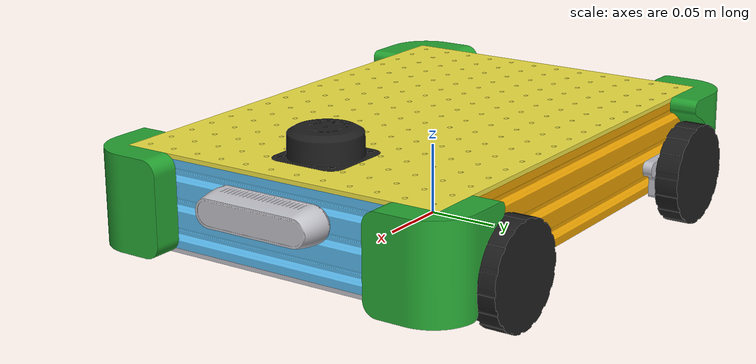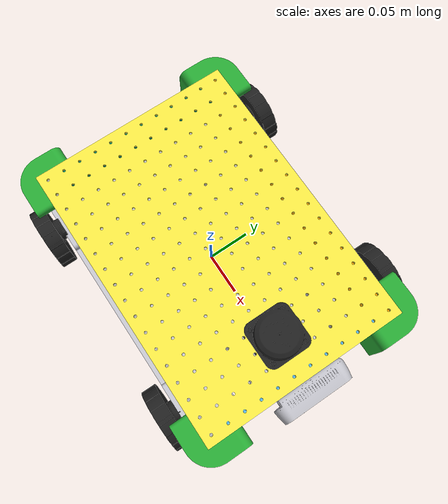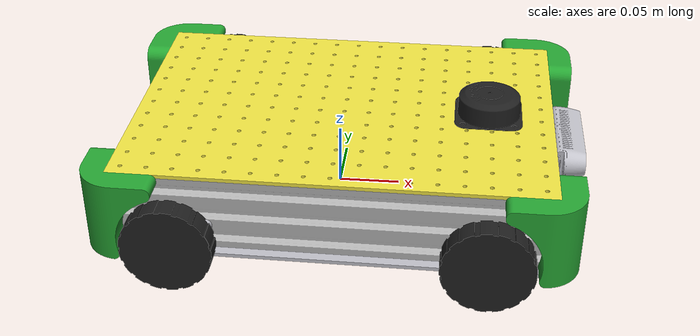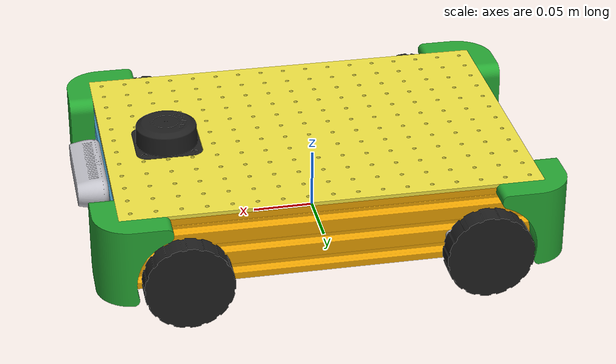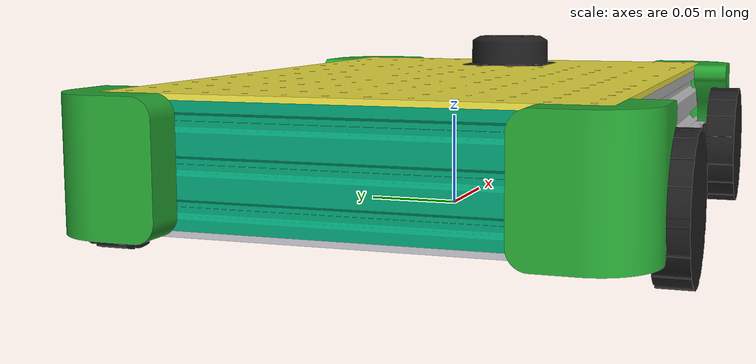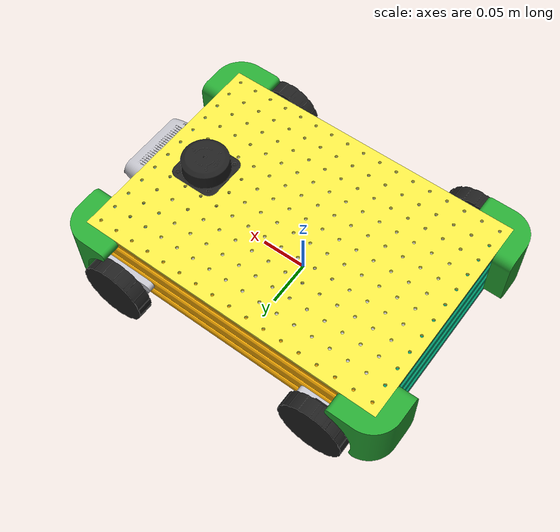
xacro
<?xml version="1.0" ?>
<robot name="base101_simple" xmlns:xacro="http://www.ros.org/wiki/xacro">

<link name="base_link">
  <inertial>
    <origin xyz="0.004138035038367605 -0.007945186495188921 0.008649103595723373" rpy="0 0 0"/>
    <mass value="0.666"/>
    <inertia ixx="0.00320365" iyy="0.00639127" izz="0.00959385" ixy="-1.78238e-05" iyz="0" ixz="0"/>
  </inertial>
  <visual>
    <origin xyz="0 0 0" rpy="0 0 0"/>
    <geometry>
      <mesh filename="file://$(find base101_description)/meshes/simple/base_link.stl" scale="0.001 0.001 0.001"/>
    </geometry>
    <material name="silver"/>
  </visual>
  <collision>
    <origin xyz="0 0 0" rpy="0 0 0"/>
    <geometry>
      <mesh filename="file://$(find base101_description)/meshes/simple/base_link.stl" scale="0.001 0.001 0.001"/>
    </geometry>
  </collision>
</link>

<link name="lidar_1">
  <inertial>
    <origin xyz="-0.02141614724245093 -0.02159463943842701 0.014018492032182493" rpy="0 0 0"/>
    <!-- DEBUG: zeroed-out to test CoG bias on rotation pivot -->
    <mass value="0.002"/>
    <inertia ixx="8.75e-07" iyy="8.75e-07" izz="1.23e-06" ixy="-0" iyz="-0" ixz="0"/>
  </inertial>
  <visual>
    <origin xyz="-0.143564 -0.013363 -0.050336" rpy="0 0 0"/>
    <geometry>
      <mesh filename="file://$(find base101_description)/meshes/simple/lidar_1.stl" scale="0.001 0.001 0.001"/>
    </geometry>
    <material name="motor_black"/>
  </visual>
  <collision>
    <origin xyz="-0.143564 -0.013363 -0.050336" rpy="0 0 0"/>
    <geometry>
      <mesh filename="file://$(find base101_description)/meshes/simple/lidar_1.stl" scale="0.001 0.001 0.001"/>
    </geometry>
  </collision>
</link>

<link name="lidar_mount_1">
  <inertial>
    <origin xyz="0.0191721439784331 -0.05000012370315443 -0.01913509723728523" rpy="0 0 0"/>
    <mass value="0.04"/>
    <inertia ixx="5.20099e-05" iyy="1.12963e-05" izz="6.14235e-05" ixy="-0" iyz="-0" ixz="-0"/>
  </inertial>
  <visual>
    <origin xyz="-0.104675 -0.041863 -0.070149" rpy="0 0 0"/>
    <geometry>
      <mesh filename="file://$(find base101_description)/meshes/simple/lidar_mount_1.stl" scale="0.001 0.001 0.001"/>
    </geometry>
    <material name="silver"/>
  </visual>
  <collision>
    <origin xyz="-0.104675 -0.041863 -0.070149" rpy="0 0 0"/>
    <geometry>
      <mesh filename="file://$(find base101_description)/meshes/simple/lidar_mount_1.stl" scale="0.001 0.001 0.001"/>
    </geometry>
  </collision>
</link>

<link name="base_camera">
  <inertial>
    <origin xyz="0.012450796675630954 -0.021387754754905838 -2.7865943366574275e-05" rpy="0 0 0"/>
    <!-- DEBUG: zeroed-out to test CoG bias on rotation pivot -->
    <mass value="0.002"/>
    <inertia ixx="1.21e-06" iyy="1.84e-07" izz="1.22e-06" ixy="1.67e-08" iyz="-0" ixz="0"/>
  </inertial>
  <visual>
    <origin xyz="-0.174675 -0.014363 -0.050149" rpy="0 0 0"/>
    <geometry>
      <mesh filename="file://$(find base101_description)/meshes/simple/base_camera.stl" scale="0.001 0.001 0.001"/>
    </geometry>
    <material name="silver"/>
  </visual>
  <collision>
    <origin xyz="-0.174675 -0.014363 -0.050149" rpy="0 0 0"/>
    <geometry>
      <mesh filename="file://$(find base101_description)/meshes/simple/base_camera.stl" scale="0.001 0.001 0.001"/>
    </geometry>
  </collision>
</link>

<link name="motor_support_FR_1">
  <inertial>
    <origin xyz="-0.024595783987571715 -0.0033482105328557776 -0.008154896995698675" rpy="0 0 0"/>
    <mass value="0.05851930214455456"/>
    <inertia ixx="5e-06" iyy="1.7e-05" izz="1.3e-05" ixy="-0.0" iyz="-0.0" ixz="0.0"/>
  </inertial>
  <visual>
    <origin xyz="-0.149239 0.128137 -0.030569" rpy="0 0 0"/>
    <geometry>
      <mesh filename="file://$(find base101_description)/meshes/simple/motor_support_FR_1.stl" scale="0.001 0.001 0.001"/>
    </geometry>
    <material name="silver"/>
  </visual>
  <collision>
    <origin xyz="-0.149239 0.128137 -0.030569" rpy="0 0 0"/>
    <geometry>
      <mesh filename="file://$(find base101_description)/meshes/simple/motor_support_FR_1.stl" scale="0.001 0.001 0.001"/>
    </geometry>
  </collision>
</link>

<link name="wheel_inside_FR_1">
  <inertial>
    <origin xyz="1.1378667513523011e-05 -0.01068877258844353 2.0379284564230743e-05" rpy="0 0 0"/>
    <mass value="0.18"/>
    <inertia ixx="1.09913e-05" iyy="1.3739e-05" izz="1.09913e-05" ixy="-0" iyz="-0" ixz="0"/>
  </inertial>
  <visual>
    <origin xyz="-0.124733 0.133037 -0.024182" rpy="0 0 0"/>
    <geometry>
      <mesh filename="file://$(find base101_description)/meshes/simple/wheel_inside_FR_1.stl" scale="0.001 0.001 0.001"/>
    </geometry>
    <material name="motor_black"/>
  </visual>
  <collision>
    <origin xyz="-0.124733 0.133037 -0.024182" rpy="0 0 0"/>
    <geometry>
      <mesh filename="file://$(find base101_description)/meshes/simple/wheel_inside_FR_1.stl" scale="0.001 0.001 0.001"/>
    </geometry>
  </collision>
</link>

<link name="wheel_outside_FR_1">
  <inertial>
    <origin xyz="-2.8797014456349856e-07 0.003281433077208823 1.8006305721116056e-07" rpy="0 0 0"/>
    <mass value="0.08"/>
    <inertia ixx="2.90155e-05" iyy="5.41735e-05" izz="2.90155e-05" ixy="-0" iyz="-0" ixz="0"/>
  </inertial>
  <visual>
    <origin xyz="-0.124733 0.152453 -0.024182" rpy="0 0 0"/>
    <geometry>
      <mesh filename="file://$(find base101_description)/meshes/simple/wheel_outside_FR_1.stl" scale="0.001 0.001 0.001"/>
    </geometry>
    <material name="motor_black"/>
  </visual>
  <collision>
    <origin xyz="-2.8797e-07 0.00328143 1.80063e-07" rpy="1.5708 0 0"/>
    <geometry>
      <cylinder length="0.03" radius="0.0363"/>
    </geometry>
  </collision>
</link>

<link name="motor_support_FL_1">
  <inertial>
    <origin xyz="-0.024595783987566316 0.003347963126491771 -0.008154896995715772" rpy="0 0 0"/>
    <mass value="0.05851930214548099"/>
    <inertia ixx="5e-06" iyy="1.7e-05" izz="1.3e-05" ixy="0.0" iyz="0.0" ixz="0.0"/>
  </inertial>
  <visual>
    <origin xyz="-0.149239 -0.111863 -0.030569" rpy="0 0 0"/>
    <geometry>
      <mesh filename="file://$(find base101_description)/meshes/simple/motor_support_FL_1.stl" scale="0.001 0.001 0.001"/>
    </geometry>
    <material name="silver"/>
  </visual>
  <collision>
    <origin xyz="-0.149239 -0.111863 -0.030569" rpy="0 0 0"/>
    <geometry>
      <mesh filename="file://$(find base101_description)/meshes/simple/motor_support_FL_1.stl" scale="0.001 0.001 0.001"/>
    </geometry>
  </collision>
</link>

<link name="wheel_inside_FL_1">
  <inertial>
    <origin xyz="1.9927832498878306e-05 0.010688525182070502 1.1830119576533571e-05" rpy="0 0 0"/>
    <mass value="0.18"/>
    <inertia ixx="1.09913e-05" iyy="1.3739e-05" izz="1.09913e-05" ixy="0" iyz="0" ixz="0"/>
  </inertial>
  <visual>
    <origin xyz="-0.124733 -0.116763 -0.024182" rpy="0 0 0"/>
    <geometry>
      <mesh filename="file://$(find base101_description)/meshes/simple/wheel_inside_FL_1.stl" scale="0.001 0.001 0.001"/>
    </geometry>
    <material name="motor_black"/>
  </visual>
  <collision>
    <origin xyz="-0.124733 -0.116763 -0.024182" rpy="0 0 0"/>
    <geometry>
      <mesh filename="file://$(find base101_description)/meshes/simple/wheel_inside_FL_1.stl" scale="0.001 0.001 0.001"/>
    </geometry>
  </collision>
</link>

<link name="wheel_inside_BL_1">
  <inertial>
    <origin xyz="-2.000939104206123e-05 0.010688525182267566 0.008927474221975628" rpy="0 0 0"/>
    <mass value="0.18"/>
    <inertia ixx="1.09913e-05" iyy="1.3739e-05" izz="1.09913e-05" ixy="-0" iyz="0" ixz="-0"/>
  </inertial>
  <visual>
    <origin xyz="0.115382 -0.116763 -0.014982" rpy="0 0 0"/>
    <geometry>
      <mesh filename="file://$(find base101_description)/meshes/simple/wheel_inside_BL_1.stl" scale="0.001 0.001 0.001"/>
    </geometry>
    <material name="motor_black"/>
  </visual>
  <collision>
    <origin xyz="0.115382 -0.116763 -0.014982" rpy="0 0 0"/>
    <geometry>
      <mesh filename="file://$(find base101_description)/meshes/simple/wheel_inside_BL_1.stl" scale="0.001 0.001 0.001"/>
    </geometry>
  </collision>
</link>

<link name="wheel_outside_FL_1">
  <inertial>
    <origin xyz="-2.879701441749205e-07 -0.003281680483583127 1.2342297787959478e-07" rpy="0 0 0"/>
    <mass value="0.08"/>
    <inertia ixx="2.90155e-05" iyy="5.41735e-05" izz="2.90155e-05" ixy="0" iyz="-0" ixz="-0"/>
  </inertial>
  <visual>
    <origin xyz="-0.124733 -0.136179 -0.024182" rpy="0 0 0"/>
    <geometry>
      <mesh filename="file://$(find base101_description)/meshes/simple/wheel_outside_FL_1.stl" scale="0.001 0.001 0.001"/>
    </geometry>
    <material name="motor_black"/>
  </visual>
  <collision>
    <origin xyz="-2.8797e-07 -0.00328168 1.23423e-07" rpy="1.5708 0 0"/>
    <geometry>
      <cylinder length="0.03" radius="0.0363"/>
    </geometry>
  </collision>
</link>

<link name="wheel_outside_BL_1">
  <inertial>
    <origin xyz="2.0641160437817607e-07 -0.0032816804833856184 -1.75834540098313e-07" rpy="0 0 0"/>
    <mass value="0.08"/>
    <inertia ixx="2.90155e-05" iyy="5.41735e-05" izz="2.90155e-05" ixy="-0" iyz="0" ixz="-0"/>
  </inertial>
  <visual>
    <origin xyz="0.115382 -0.136179 -0.023898" rpy="0 0 0"/>
    <geometry>
      <mesh filename="file://$(find base101_description)/meshes/simple/wheel_outside_BL_1.stl" scale="0.001 0.001 0.001"/>
    </geometry>
    <material name="motor_black"/>
  </visual>
  <collision>
    <origin xyz="2.06412e-07 -0.00328168 -1.75835e-07" rpy="1.5708 0 0"/>
    <geometry>
      <cylinder length="0.03" radius="0.0363"/>
    </geometry>
  </collision>
</link>

<link name="motor_support_BR_1">
  <inertial>
    <origin xyz="-0.02527729757092992 -0.003348210532854612 -0.008154896995699632" rpy="0 0 0"/>
    <mass value="0.05851930214454923"/>
    <inertia ixx="5e-06" iyy="1.7e-05" izz="1.3e-05" ixy="0.0" iyz="-0.0" ixz="-0.0"/>
  </inertial>
  <visual>
    <origin xyz="0.090015 0.128137 -0.030569" rpy="0 0 0"/>
    <geometry>
      <mesh filename="file://$(find base101_description)/meshes/simple/motor_support_BR_1.stl" scale="0.001 0.001 0.001"/>
    </geometry>
    <material name="silver"/>
  </visual>
  <collision>
    <origin xyz="0.090015 0.128137 -0.030569" rpy="0 0 0"/>
    <geometry>
      <mesh filename="file://$(find base101_description)/meshes/simple/motor_support_BR_1.stl" scale="0.001 0.001 0.001"/>
    </geometry>
  </collision>
</link>

<link name="wheel_inside_BR_1">
  <inertial>
    <origin xyz="-2.0009391030445522e-05 -0.01068877258844192 0.008927474221980503" rpy="0 0 0"/>
    <mass value="0.18"/>
    <inertia ixx="1.09913e-05" iyy="1.3739e-05" izz="1.09913e-05" ixy="0" iyz="-0" ixz="-0"/>
  </inertial>
  <visual>
    <origin xyz="0.115382 0.133037 -0.014982" rpy="0 0 0"/>
    <geometry>
      <mesh filename="file://$(find base101_description)/meshes/simple/wheel_inside_BR_1.stl" scale="0.001 0.001 0.001"/>
    </geometry>
    <material name="motor_black"/>
  </visual>
  <collision>
    <origin xyz="0.115382 0.133037 -0.014982" rpy="0 0 0"/>
    <geometry>
      <mesh filename="file://$(find base101_description)/meshes/simple/wheel_inside_BR_1.stl" scale="0.001 0.001 0.001"/>
    </geometry>
  </collision>
</link>

<link name="wheel_outside_BR_1">
  <inertial>
    <origin xyz="2.0641161270484876e-07 0.003281433077210877 -2.324746181670001e-07" rpy="0 0 0"/>
    <mass value="0.08"/>
    <inertia ixx="2.90155e-05" iyy="5.41735e-05" izz="2.90155e-05" ixy="0" iyz="0" ixz="0"/>
  </inertial>
  <visual>
    <origin xyz="0.115382 0.152453 -0.023898" rpy="0 0 0"/>
    <geometry>
      <mesh filename="file://$(find base101_description)/meshes/simple/wheel_outside_BR_1.stl" scale="0.001 0.001 0.001"/>
    </geometry>
    <material name="motor_black"/>
  </visual>
  <collision>
    <origin xyz="2.06412e-07 0.00328143 -2.32475e-07" rpy="1.5708 0 0"/>
    <geometry>
      <cylinder length="0.03" radius="0.0363"/>
    </geometry>
  </collision>
</link>

<link name="box_right_1">
  <inertial>
    <origin xyz="-0.16999954077924853 0.009999876296821697 0.030006796884407487" rpy="0 0 0"/>
    <mass value="0.381"/>
    <inertia ixx="0.000148583" iyy="0.00380186" izz="0.00368459" ixy="-0" iyz="-0" ixz="0"/>
  </inertial>
  <visual>
    <origin xyz="-0.174675 0.128137 -0.010149" rpy="0 0 0"/>
    <geometry>
      <mesh filename="file://$(find base101_description)/meshes/simple/box_right_1.stl" scale="0.001 0.001 0.001"/>
    </geometry>
    <material name="body_aluminum"/>
  </visual>
  <collision>
    <origin xyz="-0.174675 0.128137 -0.010149" rpy="0 0 0"/>
    <geometry>
      <mesh filename="file://$(find base101_description)/meshes/simple/box_right_1.stl" scale="0.001 0.001 0.001"/>
    </geometry>
  </collision>
</link>

<link name="box_left_1">
  <inertial>
    <origin xyz="-0.16999954077925108 -0.010000123703183428 0.03000679688440746" rpy="0 0 0"/>
    <mass value="0.381"/>
    <inertia ixx="0.000148583" iyy="0.00380186" izz="0.00368459" ixy="-0" iyz="-0" ixz="0"/>
  </inertial>
  <visual>
    <origin xyz="-0.174675 -0.111863 -0.010149" rpy="0 0 0"/>
    <geometry>
      <mesh filename="file://$(find base101_description)/meshes/simple/box_left_1.stl" scale="0.001 0.001 0.001"/>
    </geometry>
    <material name="body_aluminum"/>
  </visual>
  <collision>
    <origin xyz="-0.174675 -0.111863 -0.010149" rpy="0 0 0"/>
    <geometry>
      <mesh filename="file://$(find base101_description)/meshes/simple/box_left_1.stl" scale="0.001 0.001 0.001"/>
    </geometry>
  </collision>
</link>

<link name="box_front_1">
  <inertial>
    <origin xyz="-0.00999954077925222 -0.10000012370317844 0.029994165496349375" rpy="0 0 0"/>
    <mass value="0.232"/>
    <inertia ixx="0.000854825" iyy="9.03446e-05" izz="0.000783101" ixy="-0" iyz="0" ixz="0"/>
  </inertial>
  <visual>
    <origin xyz="-0.174675 -0.091863 -0.010149" rpy="0 0 0"/>
    <geometry>
      <mesh filename="file://$(find base101_description)/meshes/simple/box_front_1.stl" scale="0.001 0.001 0.001"/>
    </geometry>
    <material name="body_aluminum"/>
  </visual>
  <collision>
    <origin xyz="-0.174675 -0.091863 -0.010149" rpy="0 0 0"/>
    <geometry>
      <mesh filename="file://$(find base101_description)/meshes/simple/box_front_1.stl" scale="0.001 0.001 0.001"/>
    </geometry>
  </collision>
</link>

<link name="box_back_1">
  <inertial>
    <origin xyz="0.010000459220750046 -0.10000012370318384 0.030000103595723464" rpy="0 0 0"/>
    <mass value="0.232"/>
    <inertia ixx="0.000854318" iyy="9.0291e-05" izz="0.000782981" ixy="-0" iyz="0" ixz="0"/>
  </inertial>
  <visual>
    <origin xyz="0.165325 -0.091863 -0.010149" rpy="0 0 0"/>
    <geometry>
      <mesh filename="file://$(find base101_description)/meshes/simple/box_back_1.stl" scale="0.001 0.001 0.001"/>
    </geometry>
    <material name="body_aluminum"/>
  </visual>
  <collision>
    <origin xyz="0.165325 -0.091863 -0.010149" rpy="0 0 0"/>
    <geometry>
      <mesh filename="file://$(find base101_description)/meshes/simple/box_back_1.stl" scale="0.001 0.001 0.001"/>
    </geometry>
  </collision>
</link>

<link name="core_top_plate_v1_1">
  <inertial>
    <origin xyz="-0.1743459614756374 0.11999987629681491 0.0015001035957234593" rpy="0 0 0"/>
    <mass value="0.666"/>
    <inertia ixx="0.00331055" iyy="0.00629738" izz="0.00960682" ixy="-0" iyz="-0" ixz="0"/>
  </inertial>
  <visual>
    <origin xyz="-0.174675 0.128137 -0.070149" rpy="0 0 0"/>
    <geometry>
      <mesh filename="file://$(find base101_description)/meshes/simple/core_top_plate_v1_1.stl" scale="0.001 0.001 0.001"/>
    </geometry>
    <material name="body_aluminum"/>
  </visual>
  <collision>
    <origin xyz="-0.174675 0.128137 -0.070149" rpy="0 0 0"/>
    <geometry>
      <mesh filename="file://$(find base101_description)/meshes/simple/core_top_plate_v1_1.stl" scale="0.001 0.001 0.001"/>
    </geometry>
  </collision>
</link>

<link name="bumper_FL_1">
  <inertial>
    <origin xyz="0.0032099341331383036 -0.0074299697551648836 -0.03029856516239321" rpy="0 0 0"/>
    <mass value="0.05"/>
    <inertia ixx="3.29192e-05" iyy="2.59851e-05" izz="2.17827e-05" ixy="5.88343e-06" iyz="-2.38139e-06" ixz="3.57208e-06"/>
  </inertial>
  <visual>
    <origin xyz="-0.174675 -0.111863 -0.073149" rpy="0 0 0"/>
    <geometry>
      <mesh filename="file://$(find base101_description)/meshes/simple/bumper_FL_1.stl" scale="0.001 0.001 0.001"/>
    </geometry>
    <material name="accent_green"/>
  </visual>
  <collision>
    <origin xyz="-0.174675 -0.111863 -0.073149" rpy="0 0 0"/>
    <geometry>
      <mesh filename="file://$(find base101_description)/meshes/simple/bumper_FL_1.stl" scale="0.001 0.001 0.001"/>
    </geometry>
  </collision>
</link>

<link name="bumper_FR_1">
  <inertial>
    <origin xyz="0.0032099341334185516 0.0074297223479233565 -0.03029856516237616" rpy="0 0 0"/>
    <mass value="0.05"/>
    <inertia ixx="3.29192e-05" iyy="2.59851e-05" izz="2.17827e-05" ixy="-5.88343e-06" iyz="2.38139e-06" ixz="3.57208e-06"/>
  </inertial>
  <visual>
    <origin xyz="-0.174675 0.128137 -0.073149" rpy="0 0 0"/>
    <geometry>
      <mesh filename="file://$(find base101_description)/meshes/simple/bumper_FR_1.stl" scale="0.001 0.001 0.001"/>
    </geometry>
    <material name="accent_green"/>
  </visual>
  <collision>
    <origin xyz="-0.174675 0.128137 -0.073149" rpy="0 0 0"/>
    <geometry>
      <mesh filename="file://$(find base101_description)/meshes/simple/bumper_FR_1.stl" scale="0.001 0.001 0.001"/>
    </geometry>
  </collision>
</link>

<link name="bumper_BR_1">
  <inertial>
    <origin xyz="-0.0032090476461422435 0.007429776588759318 -0.030298520067340087" rpy="0 0 0"/>
    <mass value="0.05"/>
    <inertia ixx="3.29193e-05" iyy="2.59852e-05" izz="2.17827e-05" ixy="5.88344e-06" iyz="2.38139e-06" ixz="-3.57209e-06"/>
  </inertial>
  <visual>
    <origin xyz="0.165325 0.128137 -0.073149" rpy="0 0 0"/>
    <geometry>
      <mesh filename="file://$(find base101_description)/meshes/simple/bumper_BR_1.stl" scale="0.001 0.001 0.001"/>
    </geometry>
    <material name="accent_green"/>
  </visual>
  <collision>
    <origin xyz="0.165325 0.128137 -0.073149" rpy="0 0 0"/>
    <geometry>
      <mesh filename="file://$(find base101_description)/meshes/simple/bumper_BR_1.stl" scale="0.001 0.001 0.001"/>
    </geometry>
  </collision>
</link>

<link name="bumper_BL_1">
  <inertial>
    <origin xyz="-0.0032090476461490713 -0.007430023995160268 -0.030298520067342093" rpy="0 0 0"/>
    <mass value="0.05"/>
    <inertia ixx="3.29193e-05" iyy="2.59852e-05" izz="2.17827e-05" ixy="-5.88344e-06" iyz="-2.38139e-06" ixz="-3.57209e-06"/>
  </inertial>
  <visual>
    <origin xyz="0.165325 -0.111863 -0.073149" rpy="0 0 0"/>
    <geometry>
      <mesh filename="file://$(find base101_description)/meshes/simple/bumper_BL_1.stl" scale="0.001 0.001 0.001"/>
    </geometry>
    <material name="accent_green"/>
  </visual>
  <collision>
    <origin xyz="0.165325 -0.111863 -0.073149" rpy="0 0 0"/>
    <geometry>
      <mesh filename="file://$(find base101_description)/meshes/simple/bumper_BL_1.stl" scale="0.001 0.001 0.001"/>
    </geometry>
  </collision>
</link>

<link name="motor_support_BL_1">
  <inertial>
    <origin xyz="0.024594841127992637 0.003347579512668397 -0.008117758982724387" rpy="0 0 0"/>
    <mass value="0.058371897626062284"/>
    <inertia ixx="5e-06" iyy="1.7e-05" izz="1.3e-05" ixy="-0.0" iyz="0.0" ixz="-0.0"/>
  </inertial>
  <visual>
    <origin xyz="0.139888 -0.111863 -0.030569" rpy="0 0 0"/>
    <geometry>
      <mesh filename="file://$(find base101_description)/meshes/simple/motor_support_BL_1.stl" scale="0.001 0.001 0.001"/>
    </geometry>
    <material name="silver"/>
  </visual>
  <collision>
    <origin xyz="0.139888 -0.111863 -0.030569" rpy="0 0 0"/>
    <geometry>
      <mesh filename="file://$(find base101_description)/meshes/simple/motor_support_BL_1.stl" scale="0.001 0.001 0.001"/>
    </geometry>
  </collision>
</link>

<joint name="Rigid 12" type="fixed">
  <origin xyz="0.038889 -0.0285 -0.019813" rpy="0 0 0"/>
  <parent link="lidar_mount_1"/>
  <child link="lidar_1"/>
</joint>

<joint name="Rigid 31" type="fixed">
  <origin xyz="-0.07 0.17 0.0" rpy="0 0 0"/>
  <parent link="core_top_plate_v1_1"/>
  <child link="lidar_mount_1"/>
</joint>

<joint name="Rigid 33" type="fixed">
  <origin xyz="0.0 -0.0775 0.04" rpy="0 0 0"/>
  <parent link="box_front_1"/>
  <child link="base_camera"/>
</joint>

<joint name="Rigid 51" type="fixed">
  <origin xyz="-0.025436 0.0 0.02042" rpy="0 0 0"/>
  <parent link="box_right_1"/>
  <child link="motor_support_FR_1"/>
</joint>

<joint name="Rigid 52" type="fixed">
  <origin xyz="-0.024506 -0.0049 -0.006387" rpy="0 0 0"/>
  <parent link="motor_support_FR_1"/>
  <child link="wheel_inside_FR_1"/>
</joint>

<joint name="wheel_front_right" type="continuous">
  <origin xyz="0.0 -0.019416 0.0" rpy="0 0 0"/>
  <parent link="wheel_inside_FR_1"/>
  <child link="wheel_outside_FR_1"/>
  <axis xyz="0.0 1.0 0.0"/>
</joint>

<joint name="Rigid 54" type="fixed">
  <origin xyz="-0.025436 0.0 0.02042" rpy="0 0 0"/>
  <parent link="box_left_1"/>
  <child link="motor_support_FL_1"/>
</joint>

<joint name="Rigid 55" type="fixed">
  <origin xyz="-0.024506 0.0049 -0.006387" rpy="0 0 0"/>
  <parent link="motor_support_FL_1"/>
  <child link="wheel_inside_FL_1"/>
</joint>

<joint name="Rigid 56" type="fixed">
  <!-- Z matched to front (Rigid 55) so all 4 wheels are coplanar. -->
  <origin xyz="0.024506 0.0049 -0.006387" rpy="0 0 0"/>
  <parent link="motor_support_BL_1"/>
  <child link="wheel_inside_BL_1"/>
</joint>

<joint name="wheel_front_left" type="continuous">
  <origin xyz="0.0 0.019416 0.0" rpy="0 0 0"/>
  <parent link="wheel_inside_FL_1"/>
  <child link="wheel_outside_FL_1"/>
  <axis xyz="0.0 1.0 0.0"/>
</joint>

<joint name="wheel_rear_left" type="continuous">
  <!-- Z matched to wheel_front_left so all 4 wheels are coplanar. -->
  <origin xyz="0.0 0.019416 0.0" rpy="0 0 0"/>
  <parent link="wheel_inside_BL_1"/>
  <child link="wheel_outside_BL_1"/>
  <axis xyz="0.0 1.0 0.0"/>
</joint>

<joint name="Rigid 60" type="fixed">
  <origin xyz="-0.26469 0.0 0.02042" rpy="0 0 0"/>
  <parent link="box_right_1"/>
  <child link="motor_support_BR_1"/>
</joint>

<joint name="Rigid 61" type="fixed">
  <!-- Z matched to front (Rigid 52) so all 4 wheels are coplanar. -->
  <origin xyz="-0.025367 -0.0049 -0.006387" rpy="0 0 0"/>
  <parent link="motor_support_BR_1"/>
  <child link="wheel_inside_BR_1"/>
</joint>

<joint name="wheel_rear_right" type="continuous">
  <!-- Z matched to wheel_front_right so all 4 wheels are coplanar. -->
  <origin xyz="0.0 -0.019416 0.0" rpy="0 0 0"/>
  <parent link="wheel_inside_BR_1"/>
  <child link="wheel_outside_BR_1"/>
  <axis xyz="0.0 1.0 0.0"/>
</joint>

<joint name="Rigid 63" type="fixed">
  <origin xyz="0.174675 -0.120 0.010149" rpy="0 0 0"/>
  <parent link="base_link"/>
  <child link="box_right_1"/>
</joint>

<joint name="Rigid 64" type="fixed">
  <!-- Y shifted from 0.111863. Paired with Rigid 63 above so the chassis
       centerline matches base_link Y=0. -->
  <origin xyz="0.174675 0.120 0.010149" rpy="0 0 0"/>
  <parent link="base_link"/>
  <child link="box_left_1"/>
</joint>

<joint name="Rigid 65" type="fixed">
  <origin xyz="0.0 -0.02 0.0" rpy="0 0 0"/>
  <parent link="box_left_1"/>
  <child link="box_front_1"/>
</joint>

<joint name="Rigid 66" type="fixed">
  <origin xyz="-0.34 -0.02 0.0" rpy="0 0 0"/>
  <parent link="box_left_1"/>
  <child link="box_back_1"/>
</joint>

<joint name="Rigid 67" type="fixed">
  <origin xyz="0.0 0.0 0.06" rpy="0 0 0"/>
  <parent link="box_right_1"/>
  <child link="core_top_plate_v1_1"/>
</joint>

<joint name="Rigid 68" type="fixed">
  <origin xyz="0.0 0.24 0.003" rpy="0 0 0"/>
  <parent link="core_top_plate_v1_1"/>
  <child link="bumper_FL_1"/>
</joint>

<joint name="Rigid 69" type="fixed">
  <origin xyz="0.0 0.0 0.003" rpy="0 0 0"/>
  <parent link="core_top_plate_v1_1"/>
  <child link="bumper_FR_1"/>
</joint>

<joint name="Rigid 70" type="fixed">
  <origin xyz="-0.34 0.0 0.003" rpy="0 0 0"/>
  <parent link="core_top_plate_v1_1"/>
  <child link="bumper_BR_1"/>
</joint>

<joint name="Rigid 71" type="fixed">
  <origin xyz="-0.34 0.24 0.003" rpy="0 0 0"/>
  <parent link="core_top_plate_v1_1"/>
  <child link="bumper_BL_1"/>
</joint>

<joint name="Rigid 72" type="fixed">
  <origin xyz="-0.314563 0.0 0.02042" rpy="0 0 0"/>
  <parent link="box_left_1"/>
  <child link="motor_support_BL_1"/>
</joint>

<link name="lidar_frame"/>
<joint name="lidar_frame_joint" type="fixed">
  <origin xyz="-0.021416 -0.021595 0.044018" rpy="0 0 0"/>
  <parent link="lidar_1"/>
  <child link="lidar_frame"/>
</joint>

</robot>
